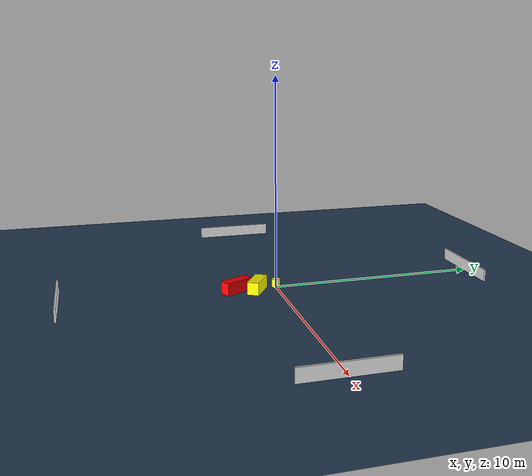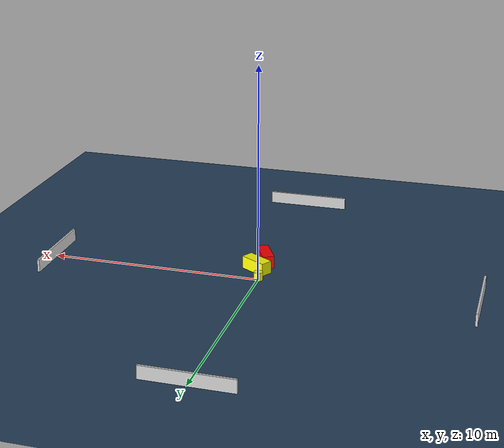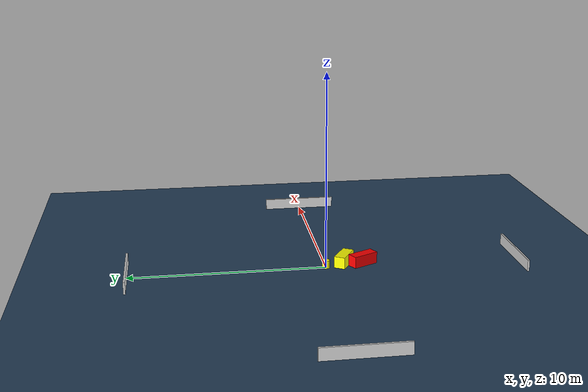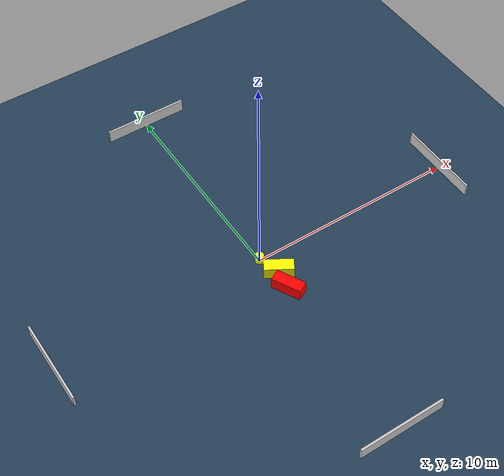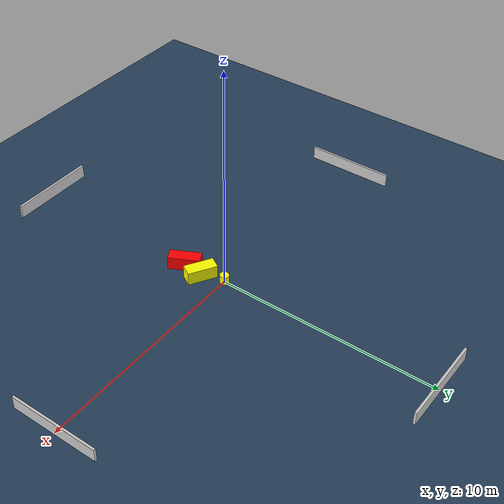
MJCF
<?xml version="1.0" ?>
<mujoco model="generated_environment">
  <option timestep="0.01" integrator="RK4" cone="elliptic"/>
  <default>
    <geom density="1"/>
  </default>
  <asset>
    <texture builtin="gradient" height="3072" name="skybox" rgb1="0.3 0.5 0.7" rgb2="0 0 0" type="skybox" width="512"/>
    <texture builtin="checker" height="300" name="groundplane" rgb1="0.2 0.3 0.4" rgb2="0.1 0.2 0.3" type="2d" width="300"/>
    <material name="groundplane" reflectance="0.2" texrepeat="5 5" texture="groundplane"/>
  </asset>
  <worldbody>
    <light dir="0 0 -1" directional="true" pos="0 0 1.5"/>
    <geom condim="3" friction="0.5 0.005 0.001" material="groundplane" name="floor" pos="0 0 0" size="0 0 0.05" type="plane"/>
    <body name="walls">
      <geom name="wall_1" condim="4" pos="-10.0 0.0 0.3" rgba="0.800000011920929 0.800000011920929 0.800000011920929 1.0" size="0.05 2.0 0.3" type="box"/>
      <geom name="wall_2" condim="4" pos="10.0 0.0 0.3" rgba="0.800000011920929 0.800000011920929 0.800000011920929 1.0" size="0.05 2.0 0.3" type="box"/>
      <geom name="wall_3" condim="4" pos="0.0 -10.0 0.3" rgba="0.800000011920929 0.800000011920929 0.800000011920929 1.0" size="2.0 0.05 0.3" type="box"/>
      <geom name="wall_4" condim="4" pos="0.0 10.0 0.3" rgba="0.800000011920929 0.800000011920929 0.800000011920929 1.0" size="2.0 0.05 0.3" type="box"/>
    </body>
    <body name="robot">
      <joint name="joint_x" type="slide" pos="0 0 0" axis="1 0 0"/>
      <joint name="joint_y" type="slide" pos="0 0 0" axis="0 1 0"/>
      <geom name="robot" type="cylinder" pos="0.0 0.0 0.2" size="0.2 0.2 0.0" mass="5.0" friction="1.0 0.005 0.0001" condim="4" rgba="1.0 1.0 0.0 1.0"/>
    </body>
    <body name="obstacle_1_movable">
      <geom name="obstacle_1_movable" condim="4" pos="0.3370601394350908 -0.99718294593408 0.3" euler="0 0 239.1304534817034" friction="0.0 0.005 0.001" rgba="1.0 1.0 0.0 1.0" size="0.2843416729889816 0.6626002621617206 0.3" type="box" mass="0.1"/>
      <joint type="free"/>
    </body>
    <body name="obstacle_2_static">
      <geom name="obstacle_2_static" condim="4" pos="0.19234635265926592 -1.9556834227418842 0.3" euler="0 0 297.5279191111093" friction="0.0 0.005 0.001" rgba="1.0 0.0 0.0 1.0" size="0.6997860761965969 0.2773269221463388 0.3" type="box"/>
    </body>
  </worldbody>
  <actuator>
    <motor name="actuator_x" joint="joint_x" gear="1" ctrlrange="-1 1"/>
    <motor name="actuator_y" joint="joint_y" gear="1" ctrlrange="-1 1"/>
  </actuator>
</mujoco>
